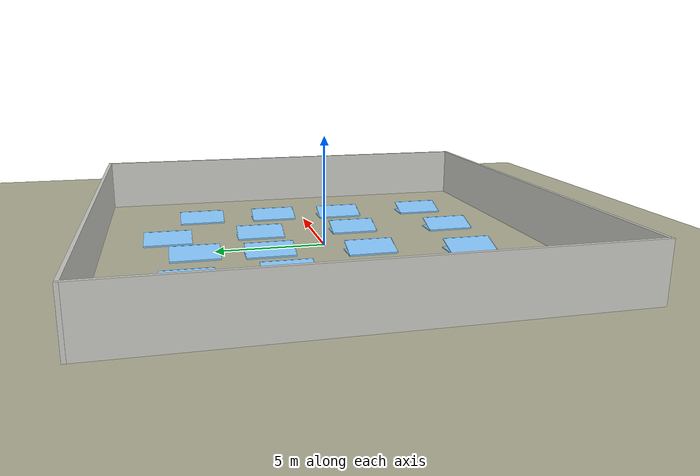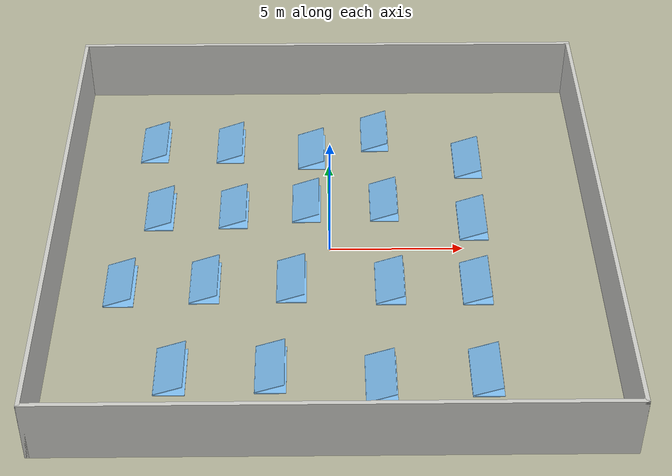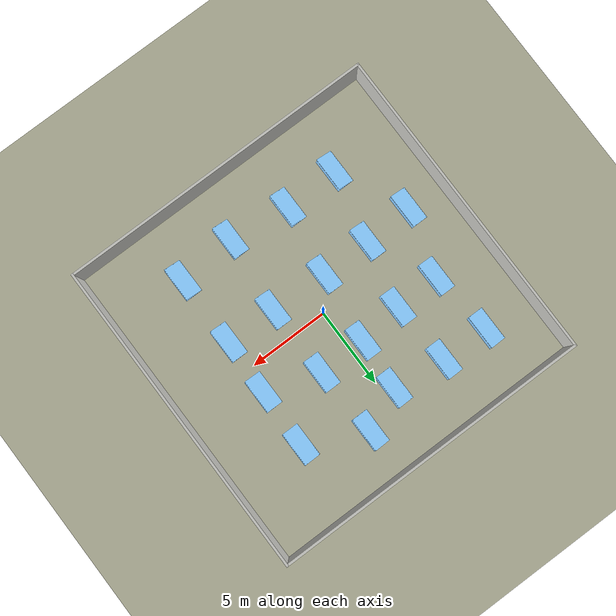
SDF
<sdf version='1.7'>
  <world name='default'>
    <physics type='ode'>
      <max_step_size>0.001</max_step_size>
      <real_time_factor>1</real_time_factor>
      <real_time_update_rate>1000</real_time_update_rate>
      <ode>
        <solver>
          <iters>100</iters>
          <sor>1.3</sor>
          <type>quick</type>
          <use_dynamic_moi_rescaling>0</use_dynamic_moi_rescaling>
        </solver>
        <constraints>
          <cfm>1e-05</cfm>
          <erp>0.2</erp>
          <contact_max_correcting_vel>100</contact_max_correcting_vel>
          <contact_surface_layer>0.001</contact_surface_layer>
        </constraints>
      </ode>
    </physics>
    <light name='sun' type='directional'>
      <cast_shadows>0</cast_shadows>
      <pose>0 0 10 0 -0 0</pose>
      <diffuse>0.8 0.8 0.8 1</diffuse>
      <specular>0.2 0.2 0.2 1</specular>
      <attenuation>
        <range>1000</range>
        <constant>0.9</constant>
        <linear>0.01</linear>
        <quadratic>0.001</quadratic>
      </attenuation>
      <direction>-0.5 -0.5 -1</direction>
      <spot>
        <inner_angle>0</inner_angle>
        <outer_angle>0</outer_angle>
        <falloff>0</falloff>
      </spot>
    </light>
    <gravity>0 0 -9.8</gravity>
    <magnetic_field>6e-06 2.3e-05 -4.2e-05</magnetic_field>
    <atmosphere type='adiabatic'/>
    <scene>
      <ambient>0.98 0.98 0.98 1</ambient>
      <background>0.8 0.8 0.8 1</background>
      <shadows>0</shadows>
      <sky>
        <sunrise>6</sunrise>
        <clouds>
          <speed>12</speed>
        </clouds>
      </sky>
    </scene>
    <wind/>
    <spherical_coordinates>
      <surface_model>EARTH_WGS84</surface_model>
      <latitude_deg>0</latitude_deg>
      <longitude_deg>0</longitude_deg>
      <elevation>0</elevation>
      <heading_deg>0</heading_deg>
    </spherical_coordinates>
    <model name='ground_plane'>
      <static>1</static>
      <link name='link'>
        <collision name='collision'>
          <geometry>
            <plane>
              <normal>0 0 1</normal>
              <size>25 25</size>
            </plane>
          </geometry>
          <surface>
            <friction>
              <ode>
                <mu>1</mu>
                <mu2>0.8</mu2>
              </ode>
              <torsional>
                <ode/>
              </torsional>
            </friction>
            <contact>
              <ode/>
            </contact>
            <bounce/>
          </surface>
          <max_contacts>10</max_contacts>
        </collision>
        <visual name='visual'>
          <cast_shadows>0</cast_shadows>
          <geometry>
            <plane>
              <normal>0 0 1</normal>
              <size>25 25</size>
            </plane>
          </geometry>
          <material>
            <script>
              <uri>file://media/materials/scripts/gazebo.material</uri>
              <name>Gazebo/Residential</name>
            </script>
          </material>
        </visual>
        <self_collide>0</self_collide>
        <enable_wind>0</enable_wind>
        <kinematic>0</kinematic>
      </link>
    </model>
    <gui fullscreen='0'>
      <camera name='user_camera'>
        <pose>-6.18929 -8.45054 4.62948 0 0.465789 1.12451</pose>
        <view_controller>orbit</view_controller>
        <projection_type>perspective</projection_type>
      </camera>
    </gui>
    <model name='power_station'>
      <pose>0 0 0 0 -0 0</pose>
      <link name='Wall_0'>
        <collision name='Wall_0_Collision'>
          <geometry>
            <box>
              <size>20.15 0.15 2.5</size>
            </box>
          </geometry>
          <pose>0 0 1.25 0 -0 0</pose>
          <max_contacts>10</max_contacts>
          <surface>
            <contact>
              <ode/>
            </contact>
            <bounce/>
            <friction>
              <torsional>
                <ode/>
              </torsional>
              <ode/>
            </friction>
          </surface>
        </collision>
        <visual name='Wall_0_Visual'>
          <pose>0 0 1.25 0 -0 0</pose>
          <geometry>
            <box>
              <size>20.15 0.15 2.5</size>
            </box>
          </geometry>
          <material>
            <script>
              <uri>file://media/materials/scripts/gazebo.material</uri>
              <name>Gazebo/CeilingTiled</name>
            </script>
            <ambient>1 1 1 1</ambient>
          </material>
          <meta>
            <layer>0</layer>
          </meta>
        </visual>
        <pose>-10 0 0 0 -0 -1.5708</pose>
        <self_collide>0</self_collide>
        <enable_wind>0</enable_wind>
        <kinematic>0</kinematic>
      </link>
      <link name='Wall_1'>
        <collision name='Wall_1_Collision'>
          <geometry>
            <box>
              <size>20.15 0.15 2.5</size>
            </box>
          </geometry>
          <pose>0 0 1.25 0 -0 0</pose>
          <max_contacts>10</max_contacts>
          <surface>
            <contact>
              <ode/>
            </contact>
            <bounce/>
            <friction>
              <torsional>
                <ode/>
              </torsional>
              <ode/>
            </friction>
          </surface>
        </collision>
        <visual name='Wall_1_Visual'>
          <pose>0 0 1.25 0 -0 0</pose>
          <geometry>
            <box>
              <size>20.15 0.15 2.5</size>
            </box>
          </geometry>
          <material>
            <script>
              <uri>file://media/materials/scripts/gazebo.material</uri>
              <name>Gazebo/CeilingTiled</name>
            </script>
            <ambient>1 1 1 1</ambient>
          </material>
          <meta>
            <layer>0</layer>
          </meta>
        </visual>
        <pose>0 -10 0 0 -0 0</pose>
        <self_collide>0</self_collide>
        <enable_wind>0</enable_wind>
        <kinematic>0</kinematic>
      </link>
      <link name='Wall_2'>
        <collision name='Wall_2_Collision'>
          <geometry>
            <box>
              <size>20.15 0.15 2.5</size>
            </box>
          </geometry>
          <pose>0 0 1.25 0 -0 0</pose>
          <max_contacts>10</max_contacts>
          <surface>
            <contact>
              <ode/>
            </contact>
            <bounce/>
            <friction>
              <torsional>
                <ode/>
              </torsional>
              <ode/>
            </friction>
          </surface>
        </collision>
        <visual name='Wall_2_Visual'>
          <pose>0 0 1.25 0 -0 0</pose>
          <geometry>
            <box>
              <size>20.15 0.15 2.5</size>
            </box>
          </geometry>
          <material>
            <script>
              <uri>file://media/materials/scripts/gazebo.material</uri>
              <name>Gazebo/CeilingTiled</name>
            </script>
            <ambient>1 1 1 1</ambient>
          </material>
          <meta>
            <layer>0</layer>
          </meta>
        </visual>
        <pose>10 0 0 0 -0 1.5708</pose>
        <self_collide>0</self_collide>
        <enable_wind>0</enable_wind>
        <kinematic>0</kinematic>
      </link>
      <link name='Wall_3'>
        <collision name='Wall_3_Collision'>
          <geometry>
            <box>
              <size>20.15 0.15 2.5</size>
            </box>
          </geometry>
          <pose>0 0 1.25 0 -0 0</pose>
          <max_contacts>10</max_contacts>
          <surface>
            <contact>
              <ode/>
            </contact>
            <bounce/>
            <friction>
              <torsional>
                <ode/>
              </torsional>
              <ode/>
            </friction>
          </surface>
        </collision>
        <visual name='Wall_3_Visual'>
          <pose>0 0 1.25 0 -0 0</pose>
          <geometry>
            <box>
              <size>20.15 0.15 2.5</size>
            </box>
          </geometry>
          <material>
            <script>
              <uri>file://media/materials/scripts/gazebo.material</uri>
              <name>Gazebo/CeilingTiled</name>
            </script>
            <ambient>1 1 1 1</ambient>
          </material>
          <meta>
            <layer>0</layer>
          </meta>
        </visual>
        <pose>0 10 0 0 -0 3.14159</pose>
        <self_collide>0</self_collide>
        <enable_wind>0</enable_wind>
        <kinematic>0</kinematic>
      </link>
      <static>1</static>
    </model>
    <model name='photovoltaic'>
      <static>1</static>
      <link name='link'>
        <collision name='collision'>
          <pose>0 0 0 1.5708 -0 0</pose>
          <geometry>
            <mesh>
              <uri>file:///home/yeatswang/catkin_ws/src/xmobot/worlds/photovoltaic/meshes/photovoltaic.stl</uri>
            </mesh>
          </geometry>
          <max_contacts>10</max_contacts>
          <surface>
            <contact>
              <ode/>
            </contact>
            <bounce/>
            <friction>
              <torsional>
                <ode/>
              </torsional>
              <ode/>
            </friction>
          </surface>
        </collision>
        <visual name='visual'>
          <pose>0 0 0 1.5708 -0 0</pose>
          <geometry>
            <mesh>
              <uri>file:///home/yeatswang/catkin_ws/src/xmobot/worlds/photovoltaic/meshes/photovoltaic.stl</uri>
            </mesh>
          </geometry>
          <material>
            <script>
              <uri>file://media/materials/scripts/gazebo.material</uri>
              <name>Gazebo/SkyBlue</name>
            </script>
            <ambient>1 1 1 1</ambient>
          </material>
        </visual>
        <self_collide>0</self_collide>
        <enable_wind>0</enable_wind>
        <kinematic>0</kinematic>
      </link>
      <pose>5.01309 6.35506 0 0 -0 0</pose>
    </model>
    <model name='photovoltaic_0'>
      <static>1</static>
      <link name='link'>
        <collision name='collision'>
          <pose>0 0 0 1.5708 -0 0</pose>
          <geometry>
            <mesh>
              <uri>file:///home/yeatswang/catkin_ws/src/xmobot/worlds/photovoltaic/meshes/photovoltaic.stl</uri>
            </mesh>
          </geometry>
          <max_contacts>10</max_contacts>
          <surface>
            <contact>
              <ode/>
            </contact>
            <bounce/>
            <friction>
              <torsional>
                <ode/>
              </torsional>
              <ode/>
            </friction>
          </surface>
        </collision>
        <visual name='visual'>
          <pose>0 0 0 1.5708 -0 0</pose>
          <geometry>
            <mesh>
              <uri>file:///home/yeatswang/catkin_ws/src/xmobot/worlds/photovoltaic/meshes/photovoltaic.stl</uri>
            </mesh>
          </geometry>
          <material>
            <script>
              <uri>file://media/materials/scripts/gazebo.material</uri>
              <name>Gazebo/SkyBlue</name>
            </script>
            <ambient>1 1 1 1</ambient>
          </material>
        </visual>
        <self_collide>0</self_collide>
        <enable_wind>0</enable_wind>
        <kinematic>0</kinematic>
      </link>
      <pose>4.94069 2.64956 0 0 -0 0</pose>
    </model>
    <model name='photovoltaic_1'>
      <static>1</static>
      <link name='link'>
        <collision name='collision'>
          <pose>0 0 0 1.5708 -0 0</pose>
          <geometry>
            <mesh>
              <uri>file:///home/yeatswang/catkin_ws/src/xmobot/worlds/photovoltaic/meshes/photovoltaic.stl</uri>
            </mesh>
          </geometry>
          <max_contacts>10</max_contacts>
          <surface>
            <contact>
              <ode/>
            </contact>
            <bounce/>
            <friction>
              <torsional>
                <ode/>
              </torsional>
              <ode/>
            </friction>
          </surface>
        </collision>
        <visual name='visual'>
          <pose>0 0 0 1.5708 -0 0</pose>
          <geometry>
            <mesh>
              <uri>file:///home/yeatswang/catkin_ws/src/xmobot/worlds/photovoltaic/meshes/photovoltaic.stl</uri>
            </mesh>
          </geometry>
          <material>
            <script>
              <uri>file://media/materials/scripts/gazebo.material</uri>
              <name>Gazebo/SkyBlue</name>
            </script>
            <ambient>1 1 1 1</ambient>
          </material>
        </visual>
        <self_collide>0</self_collide>
        <enable_wind>0</enable_wind>
        <kinematic>0</kinematic>
      </link>
      <pose>4.81503 -0.86242 0 0 -0 0</pose>
    </model>
    <model name='photovoltaic_2'>
      <static>1</static>
      <link name='link'>
        <collision name='collision'>
          <pose>0 0 0 1.5708 -0 0</pose>
          <geometry>
            <mesh>
              <uri>file:///home/yeatswang/catkin_ws/src/xmobot/worlds/photovoltaic/meshes/photovoltaic.stl</uri>
            </mesh>
          </geometry>
          <max_contacts>10</max_contacts>
          <surface>
            <contact>
              <ode/>
            </contact>
            <bounce/>
            <friction>
              <torsional>
                <ode/>
              </torsional>
              <ode/>
            </friction>
          </surface>
        </collision>
        <visual name='visual'>
          <pose>0 0 0 1.5708 -0 0</pose>
          <geometry>
            <mesh>
              <uri>file:///home/yeatswang/catkin_ws/src/xmobot/worlds/photovoltaic/meshes/photovoltaic.stl</uri>
            </mesh>
          </geometry>
          <material>
            <script>
              <uri>file://media/materials/scripts/gazebo.material</uri>
              <name>Gazebo/SkyBlue</name>
            </script>
            <ambient>1 1 1 1</ambient>
          </material>
        </visual>
        <self_collide>0</self_collide>
        <enable_wind>0</enable_wind>
        <kinematic>0</kinematic>
      </link>
      <pose>4.80061 -5.34208 0 0 -0 0</pose>
    </model>
    <model name='photovoltaic_3'>
      <static>1</static>
      <link name='link'>
        <collision name='collision'>
          <pose>0 0 0 1.5708 -0 0</pose>
          <geometry>
            <mesh>
              <uri>file:///home/yeatswang/catkin_ws/src/xmobot/worlds/photovoltaic/meshes/photovoltaic.stl</uri>
            </mesh>
          </geometry>
          <max_contacts>10</max_contacts>
          <surface>
            <contact>
              <ode/>
            </contact>
            <bounce/>
            <friction>
              <torsional>
                <ode/>
              </torsional>
              <ode/>
            </friction>
          </surface>
        </collision>
        <visual name='visual'>
          <pose>0 0 0 1.5708 -0 0</pose>
          <geometry>
            <mesh>
              <uri>file:///home/yeatswang/catkin_ws/src/xmobot/worlds/photovoltaic/meshes/photovoltaic.stl</uri>
            </mesh>
          </geometry>
          <material>
            <script>
              <uri>file://media/materials/scripts/gazebo.material</uri>
              <name>Gazebo/SkyBlue</name>
            </script>
            <ambient>1 1 1 1</ambient>
          </material>
        </visual>
        <self_collide>0</self_collide>
        <enable_wind>0</enable_wind>
        <kinematic>0</kinematic>
      </link>
      <pose>1.33603 8.11227 0 0 -0 0</pose>
    </model>
    <model name='photovoltaic_4'>
      <static>1</static>
      <link name='link'>
        <collision name='collision'>
          <pose>0 0 0 1.5708 -0 0</pose>
          <geometry>
            <mesh>
              <uri>file:///home/yeatswang/catkin_ws/src/xmobot/worlds/photovoltaic/meshes/photovoltaic.stl</uri>
            </mesh>
          </geometry>
          <max_contacts>10</max_contacts>
          <surface>
            <contact>
              <ode/>
            </contact>
            <bounce/>
            <friction>
              <torsional>
                <ode/>
              </torsional>
              <ode/>
            </friction>
          </surface>
        </collision>
        <visual name='visual'>
          <pose>0 0 0 1.5708 -0 0</pose>
          <geometry>
            <mesh>
              <uri>file:///home/yeatswang/catkin_ws/src/xmobot/worlds/photovoltaic/meshes/photovoltaic.stl</uri>
            </mesh>
          </geometry>
          <material>
            <script>
              <uri>file://media/materials/scripts/gazebo.material</uri>
              <name>Gazebo/SkyBlue</name>
            </script>
            <ambient>1 1 1 1</ambient>
          </material>
        </visual>
        <self_collide>0</self_collide>
        <enable_wind>0</enable_wind>
        <kinematic>0</kinematic>
      </link>
      <pose>1.57344 3.77444 0 0 -0 0</pose>
    </model>
    <model name='photovoltaic_5'>
      <static>1</static>
      <link name='link'>
        <collision name='collision'>
          <pose>0 0 0 1.5708 -0 0</pose>
          <geometry>
            <mesh>
              <uri>file:///home/yeatswang/catkin_ws/src/xmobot/worlds/photovoltaic/meshes/photovoltaic.stl</uri>
            </mesh>
          </geometry>
          <max_contacts>10</max_contacts>
          <surface>
            <contact>
              <ode/>
            </contact>
            <bounce/>
            <friction>
              <torsional>
                <ode/>
              </torsional>
              <ode/>
            </friction>
          </surface>
        </collision>
        <visual name='visual'>
          <pose>0 0 0 1.5708 -0 0</pose>
          <geometry>
            <mesh>
              <uri>file:///home/yeatswang/catkin_ws/src/xmobot/worlds/photovoltaic/meshes/photovoltaic.stl</uri>
            </mesh>
          </geometry>
          <material>
            <script>
              <uri>file://media/materials/scripts/gazebo.material</uri>
              <name>Gazebo/SkyBlue</name>
            </script>
            <ambient>1 1 1 1</ambient>
          </material>
        </visual>
        <self_collide>0</self_collide>
        <enable_wind>0</enable_wind>
        <kinematic>0</kinematic>
      </link>
      <pose>1.64499 -0.828812 0 0 -0 0</pose>
    </model>
    <model name='photovoltaic_6'>
      <static>1</static>
      <link name='link'>
        <collision name='collision'>
          <pose>0 0 0 1.5708 -0 0</pose>
          <geometry>
            <mesh>
              <uri>file:///home/yeatswang/catkin_ws/src/xmobot/worlds/photovoltaic/meshes/photovoltaic.stl</uri>
            </mesh>
          </geometry>
          <max_contacts>10</max_contacts>
          <surface>
            <contact>
              <ode/>
            </contact>
            <bounce/>
            <friction>
              <torsional>
                <ode/>
              </torsional>
              <ode/>
            </friction>
          </surface>
        </collision>
        <visual name='visual'>
          <pose>0 0 0 1.5708 -0 0</pose>
          <geometry>
            <mesh>
              <uri>file:///home/yeatswang/catkin_ws/src/xmobot/worlds/photovoltaic/meshes/photovoltaic.stl</uri>
            </mesh>
          </geometry>
          <material>
            <script>
              <uri>file://media/materials/scripts/gazebo.material</uri>
              <name>Gazebo/SkyBlue</name>
            </script>
            <ambient>1 1 1 1</ambient>
          </material>
        </visual>
        <self_collide>0</self_collide>
        <enable_wind>0</enable_wind>
        <kinematic>0</kinematic>
      </link>
      <pose>1.15474 -5.61088 0 0 -0 0</pose>
    </model>
    <model name='photovoltaic_7'>
      <static>1</static>
      <link name='link'>
        <collision name='collision'>
          <pose>0 0 0 1.5708 -0 0</pose>
          <geometry>
            <mesh>
              <uri>file:///home/yeatswang/catkin_ws/src/xmobot/worlds/photovoltaic/meshes/photovoltaic.stl</uri>
            </mesh>
          </geometry>
          <max_contacts>10</max_contacts>
          <surface>
            <contact>
              <ode/>
            </contact>
            <bounce/>
            <friction>
              <torsional>
                <ode/>
              </torsional>
              <ode/>
            </friction>
          </surface>
        </collision>
        <visual name='visual'>
          <pose>0 0 0 1.5708 -0 0</pose>
          <geometry>
            <mesh>
              <uri>file:///home/yeatswang/catkin_ws/src/xmobot/worlds/photovoltaic/meshes/photovoltaic.stl</uri>
            </mesh>
          </geometry>
          <material>
            <script>
              <uri>file://media/materials/scripts/gazebo.material</uri>
              <name>Gazebo/SkyBlue</name>
            </script>
            <ambient>1 1 1 1</ambient>
          </material>
        </visual>
        <self_collide>0</self_collide>
        <enable_wind>0</enable_wind>
        <kinematic>0</kinematic>
      </link>
      <pose>-2.66024 -5.13074 0 0 -0 0</pose>
    </model>
    <model name='photovoltaic_8'>
      <static>1</static>
      <link name='link'>
        <collision name='collision'>
          <pose>0 0 0 1.5708 -0 0</pose>
          <geometry>
            <mesh>
              <uri>file:///home/yeatswang/catkin_ws/src/xmobot/worlds/photovoltaic/meshes/photovoltaic.stl</uri>
            </mesh>
          </geometry>
          <max_contacts>10</max_contacts>
          <surface>
            <contact>
              <ode/>
            </contact>
            <bounce/>
            <friction>
              <torsional>
                <ode/>
              </torsional>
              <ode/>
            </friction>
          </surface>
        </collision>
        <visual name='visual'>
          <pose>0 0 0 1.5708 -0 0</pose>
          <geometry>
            <mesh>
              <uri>file:///home/yeatswang/catkin_ws/src/xmobot/worlds/photovoltaic/meshes/photovoltaic.stl</uri>
            </mesh>
          </geometry>
          <material>
            <script>
              <uri>file://media/materials/scripts/gazebo.material</uri>
              <name>Gazebo/SkyBlue</name>
            </script>
            <ambient>1 1 1 1</ambient>
          </material>
        </visual>
        <self_collide>0</self_collide>
        <enable_wind>0</enable_wind>
        <kinematic>0</kinematic>
      </link>
      <pose>-1.97893 -0.690768 0 0 -0 0</pose>
    </model>
    <model name='photovoltaic_9'>
      <static>1</static>
      <link name='link'>
        <collision name='collision'>
          <pose>0 0 0 1.5708 -0 0</pose>
          <geometry>
            <mesh>
              <uri>file:///home/yeatswang/catkin_ws/src/xmobot/worlds/photovoltaic/meshes/photovoltaic.stl</uri>
            </mesh>
          </geometry>
          <max_contacts>10</max_contacts>
          <surface>
            <contact>
              <ode/>
            </contact>
            <bounce/>
            <friction>
              <torsional>
                <ode/>
              </torsional>
              <ode/>
            </friction>
          </surface>
        </collision>
        <visual name='visual'>
          <pose>0 0 0 1.5708 -0 0</pose>
          <geometry>
            <mesh>
              <uri>file:///home/yeatswang/catkin_ws/src/xmobot/worlds/photovoltaic/meshes/photovoltaic.stl</uri>
            </mesh>
          </geometry>
          <material>
            <script>
              <uri>file://media/materials/scripts/gazebo.material</uri>
              <name>Gazebo/SkyBlue</name>
            </script>
            <ambient>1 1 1 1</ambient>
          </material>
        </visual>
        <self_collide>0</self_collide>
        <enable_wind>0</enable_wind>
        <kinematic>0</kinematic>
      </link>
      <pose>-1.43632 3.73662 0 0 -0 0</pose>
    </model>
    <model name='photovoltaic_10'>
      <static>1</static>
      <link name='link'>
        <collision name='collision'>
          <pose>0 0 0 1.5708 -0 0</pose>
          <geometry>
            <mesh>
              <uri>file:///home/yeatswang/catkin_ws/src/xmobot/worlds/photovoltaic/meshes/photovoltaic.stl</uri>
            </mesh>
          </geometry>
          <max_contacts>10</max_contacts>
          <surface>
            <contact>
              <ode/>
            </contact>
            <bounce/>
            <friction>
              <torsional>
                <ode/>
              </torsional>
              <ode/>
            </friction>
          </surface>
        </collision>
        <visual name='visual'>
          <pose>0 0 0 1.5708 -0 0</pose>
          <geometry>
            <mesh>
              <uri>file:///home/yeatswang/catkin_ws/src/xmobot/worlds/photovoltaic/meshes/photovoltaic.stl</uri>
            </mesh>
          </geometry>
          <material>
            <script>
              <uri>file://media/materials/scripts/gazebo.material</uri>
              <name>Gazebo/SkyBlue</name>
            </script>
            <ambient>1 1 1 1</ambient>
          </material>
        </visual>
        <self_collide>0</self_collide>
        <enable_wind>0</enable_wind>
        <kinematic>0</kinematic>
      </link>
      <pose>-1.23236 6.98578 0 0 -0 0</pose>
    </model>
    <model name='photovoltaic_11'>
      <static>1</static>
      <link name='link'>
        <collision name='collision'>
          <pose>0 0 0 1.5708 -0 0</pose>
          <geometry>
            <mesh>
              <uri>file:///home/yeatswang/catkin_ws/src/xmobot/worlds/photovoltaic/meshes/photovoltaic.stl</uri>
            </mesh>
          </geometry>
          <max_contacts>10</max_contacts>
          <surface>
            <contact>
              <ode/>
            </contact>
            <bounce/>
            <friction>
              <torsional>
                <ode/>
              </torsional>
              <ode/>
            </friction>
          </surface>
        </collision>
        <visual name='visual'>
          <pose>0 0 0 1.5708 -0 0</pose>
          <geometry>
            <mesh>
              <uri>file:///home/yeatswang/catkin_ws/src/xmobot/worlds/photovoltaic/meshes/photovoltaic.stl</uri>
            </mesh>
          </geometry>
          <material>
            <script>
              <uri>file://media/materials/scripts/gazebo.material</uri>
              <name>Gazebo/SkyBlue</name>
            </script>
            <ambient>1 1 1 1</ambient>
          </material>
        </visual>
        <self_collide>0</self_collide>
        <enable_wind>0</enable_wind>
        <kinematic>0</kinematic>
      </link>
      <pose>-4.51294 7.40698 0 0 -0 0</pose>
    </model>
    <model name='photovoltaic_12'>
      <static>1</static>
      <link name='link'>
        <collision name='collision'>
          <pose>0 0 0 1.5708 -0 0</pose>
          <geometry>
            <mesh>
              <uri>file:///home/yeatswang/catkin_ws/src/xmobot/worlds/photovoltaic/meshes/photovoltaic.stl</uri>
            </mesh>
          </geometry>
          <max_contacts>10</max_contacts>
          <surface>
            <contact>
              <ode/>
            </contact>
            <bounce/>
            <friction>
              <torsional>
                <ode/>
              </torsional>
              <ode/>
            </friction>
          </surface>
        </collision>
        <visual name='visual'>
          <pose>0 0 0 1.5708 -0 0</pose>
          <geometry>
            <mesh>
              <uri>file:///home/yeatswang/catkin_ws/src/xmobot/worlds/photovoltaic/meshes/photovoltaic.stl</uri>
            </mesh>
          </geometry>
          <material>
            <script>
              <uri>file://media/materials/scripts/gazebo.material</uri>
              <name>Gazebo/SkyBlue</name>
            </script>
            <ambient>1 1 1 1</ambient>
          </material>
        </visual>
        <self_collide>0</self_collide>
        <enable_wind>0</enable_wind>
        <kinematic>0</kinematic>
      </link>
      <pose>-4.24436 3.40352 0 0 -0 0</pose>
    </model>
    <model name='photovoltaic_13'>
      <static>1</static>
      <link name='link'>
        <collision name='collision'>
          <pose>0 0 0 1.5708 -0 0</pose>
          <geometry>
            <mesh>
              <uri>file:///home/yeatswang/catkin_ws/src/xmobot/worlds/photovoltaic/meshes/photovoltaic.stl</uri>
            </mesh>
          </geometry>
          <max_contacts>10</max_contacts>
          <surface>
            <contact>
              <ode/>
            </contact>
            <bounce/>
            <friction>
              <torsional>
                <ode/>
              </torsional>
              <ode/>
            </friction>
          </surface>
        </collision>
        <visual name='visual'>
          <pose>0 0 0 1.5708 -0 0</pose>
          <geometry>
            <mesh>
              <uri>file:///home/yeatswang/catkin_ws/src/xmobot/worlds/photovoltaic/meshes/photovoltaic.stl</uri>
            </mesh>
          </geometry>
          <material>
            <script>
              <uri>file://media/materials/scripts/gazebo.material</uri>
              <name>Gazebo/SkyBlue</name>
            </script>
            <ambient>1 1 1 1</ambient>
          </material>
        </visual>
        <self_collide>0</self_collide>
        <enable_wind>0</enable_wind>
        <kinematic>0</kinematic>
      </link>
      <pose>-5.15387 -0.72718 0 0 -0 0</pose>
    </model>
    <model name='photovoltaic_14'>
      <static>1</static>
      <link name='link'>
        <collision name='collision'>
          <pose>0 0 0 1.5708 -0 0</pose>
          <geometry>
            <mesh>
              <uri>file:///home/yeatswang/catkin_ws/src/xmobot/worlds/photovoltaic/meshes/photovoltaic.stl</uri>
            </mesh>
          </geometry>
          <max_contacts>10</max_contacts>
          <surface>
            <contact>
              <ode/>
            </contact>
            <bounce/>
            <friction>
              <torsional>
                <ode/>
              </torsional>
              <ode/>
            </friction>
          </surface>
        </collision>
        <visual name='visual'>
          <pose>0 0 0 1.5708 -0 0</pose>
          <geometry>
            <mesh>
              <uri>file:///home/yeatswang/catkin_ws/src/xmobot/worlds/photovoltaic/meshes/photovoltaic.stl</uri>
            </mesh>
          </geometry>
          <material>
            <script>
              <uri>file://media/materials/scripts/gazebo.material</uri>
              <name>Gazebo/SkyBlue</name>
            </script>
            <ambient>1 1 1 1</ambient>
          </material>
        </visual>
        <self_collide>0</self_collide>
        <enable_wind>0</enable_wind>
        <kinematic>0</kinematic>
      </link>
      <pose>-6.12476 -5.20198 0 0 -0 0</pose>
    </model>
    <model name='photovoltaic_15'>
      <static>1</static>
      <link name='link'>
        <collision name='collision'>
          <pose>0 0 0 1.5708 -0 0</pose>
          <geometry>
            <mesh>
              <uri>file:///home/yeatswang/catkin_ws/src/xmobot/worlds/photovoltaic/meshes/photovoltaic.stl</uri>
            </mesh>
          </geometry>
          <max_contacts>10</max_contacts>
          <surface>
            <contact>
              <ode/>
            </contact>
            <bounce/>
            <friction>
              <torsional>
                <ode/>
              </torsional>
              <ode/>
            </friction>
          </surface>
        </collision>
        <visual name='visual'>
          <pose>0 0 0 1.5708 -0 0</pose>
          <geometry>
            <mesh>
              <uri>file:///home/yeatswang/catkin_ws/src/xmobot/worlds/photovoltaic/meshes/photovoltaic.stl</uri>
            </mesh>
          </geometry>
          <material>
            <script>
              <uri>file://media/materials/scripts/gazebo.material</uri>
              <name>Gazebo/SkyBlue</name>
            </script>
            <ambient>1 1 1 1</ambient>
          </material>
        </visual>
        <self_collide>0</self_collide>
        <enable_wind>0</enable_wind>
        <kinematic>0</kinematic>
      </link>
      <pose>-7.55959 7.45792 0 0 -0 0</pose>
    </model>
    <model name='photovoltaic_16'>
      <static>1</static>
      <link name='link'>
        <collision name='collision'>
          <pose>0 0 0 1.5708 -0 0</pose>
          <geometry>
            <mesh>
              <uri>file:///home/yeatswang/catkin_ws/src/xmobot/worlds/photovoltaic/meshes/photovoltaic.stl</uri>
            </mesh>
          </geometry>
          <max_contacts>10</max_contacts>
          <surface>
            <contact>
              <ode/>
            </contact>
            <bounce/>
            <friction>
              <torsional>
                <ode/>
              </torsional>
              <ode/>
            </friction>
          </surface>
        </collision>
        <visual name='visual'>
          <pose>0 0 0 1.5708 -0 0</pose>
          <geometry>
            <mesh>
              <uri>file:///home/yeatswang/catkin_ws/src/xmobot/worlds/photovoltaic/meshes/photovoltaic.stl</uri>
            </mesh>
          </geometry>
          <material>
            <script>
              <uri>file://media/materials/scripts/gazebo.material</uri>
              <name>Gazebo/SkyBlue</name>
            </script>
            <ambient>1 1 1 1</ambient>
          </material>
        </visual>
        <self_collide>0</self_collide>
        <enable_wind>0</enable_wind>
        <kinematic>0</kinematic>
      </link>
      <pose>-7.09257 3.31541 0 0 -0 0</pose>
    </model>
    <model name='photovoltaic_17'>
      <static>1</static>
      <link name='link'>
        <collision name='collision'>
          <pose>0 0 0 1.5708 -0 0</pose>
          <geometry>
            <mesh>
              <uri>file:///home/yeatswang/catkin_ws/src/xmobot/worlds/photovoltaic/meshes/photovoltaic.stl</uri>
            </mesh>
          </geometry>
          <max_contacts>10</max_contacts>
          <surface>
            <contact>
              <ode/>
            </contact>
            <bounce/>
            <friction>
              <torsional>
                <ode/>
              </torsional>
              <ode/>
            </friction>
          </surface>
        </collision>
        <visual name='visual'>
          <pose>0 0 0 1.5708 -0 0</pose>
          <geometry>
            <mesh>
              <uri>file:///home/yeatswang/catkin_ws/src/xmobot/worlds/photovoltaic/meshes/photovoltaic.stl</uri>
            </mesh>
          </geometry>
          <material>
            <script>
              <uri>file://media/materials/scripts/gazebo.material</uri>
              <name>Gazebo/SkyBlue</name>
            </script>
            <ambient>1 1 1 1</ambient>
          </material>
        </visual>
        <self_collide>0</self_collide>
        <enable_wind>0</enable_wind>
        <kinematic>0</kinematic>
      </link>
      <pose>-8.25865 -0.868349 0 0 -0 0</pose>
    </model>
  </world>
</sdf>
